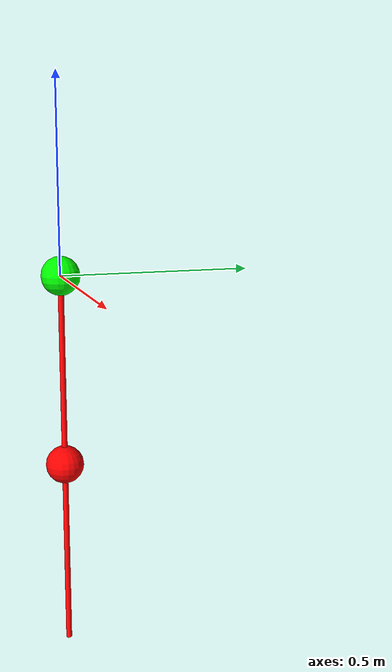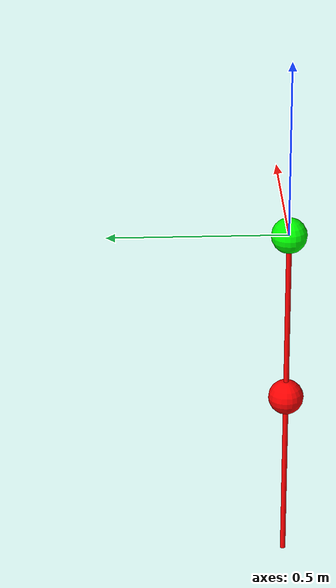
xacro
<?xml version="1.0"?>

<robot xmlns="https://drake.mit.edu"
 xmlns:xsi="http://www.w3.org/2001/XMLSchema-instance"
 xsi:schemaLocation="https://drake.mit.edu ../../../doc/drakeURDF.xsd"
 xmlns:xacro="http://ros.org/wiki/xacro" name="CompassGait">

  <xacro:property name="mh" value="10" />
  <xacro:property name="m" value="5" />
  <xacro:property name="a" value=".5" />
  <xacro:property name="b" value=".5" />

  <xacro:macro name="leg" params="lr color">
    <link name="${lr}_leg">
      <visual>
        <origin xyz="0 0 ${-(a+b)/2}" />
        <geometry>
          <cylinder radius="0.0075" length="${a+b}"/>
        </geometry>
        <material>
          <color rgba="${color}" />
        </material>
      </visual>
      <collision>
        <origin xyz="0 0 ${-a-b}" />
        <geometry>
          <sphere radius="0"/>
        </geometry>
      </collision>
    </link>
    <link name="${lr}_leg_mass">
      <visual>
        <origin xyz="0 0 ${-a}" />
        <geometry>
          <sphere radius="${.01*m}" />
        </geometry>
        <material>
          <color rgba="${color}" />
        </material>
      </visual>
      <inertial>
        <origin xyz="0 0 ${-a}" />
          <mass value="${m}" />
          <!-- zero inertia -->
      </inertial>
    </link>
    <joint name="${lr}_leg_mass_weld" type="fixed">
      <parent link="${lr}_leg" />
      <child link="${lr}_leg_mass" />
    </joint>
  </xacro:macro>

  <link name="world">
  </link>
  <link name="hip">
    <inertial>
      <mass value="${mh}" />
      <!-- inertia is zero, which is the default -->
    </inertial>
    <visual>
      <geometry>
        <sphere radius="${.005*mh}" />
      </geometry>
      <material>
        <color rgba="0 1 0 1" />
      </material>
    </visual>
  </link>

  <joint name="floating_base" type="planar">
    <parent link="world" />
    <child link="hip" />
    <axis xyz="0 1 0" />
  </joint>

  <xacro:leg lr="left" color="1 0 0 1" />
  <xacro:leg lr="right" color="0 0 1 1" />

  <joint name="left_leg_weld" type="fixed">
    <parent link="hip" />
    <child link="left_leg" />
  </joint>

  <joint name="hip_pin" type="continuous">
    <parent link="hip" />
    <child link="right_leg" />
    <axis xyz="0 1 0"/>
  </joint>

</robot>
